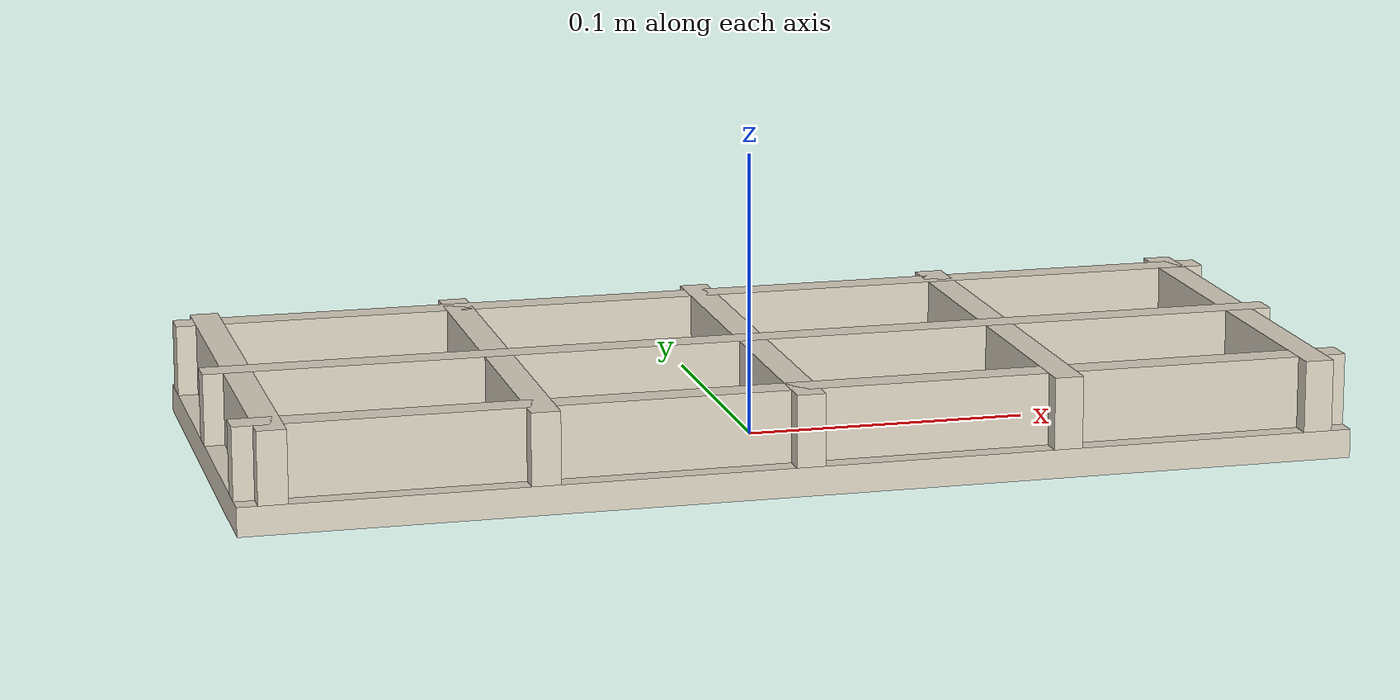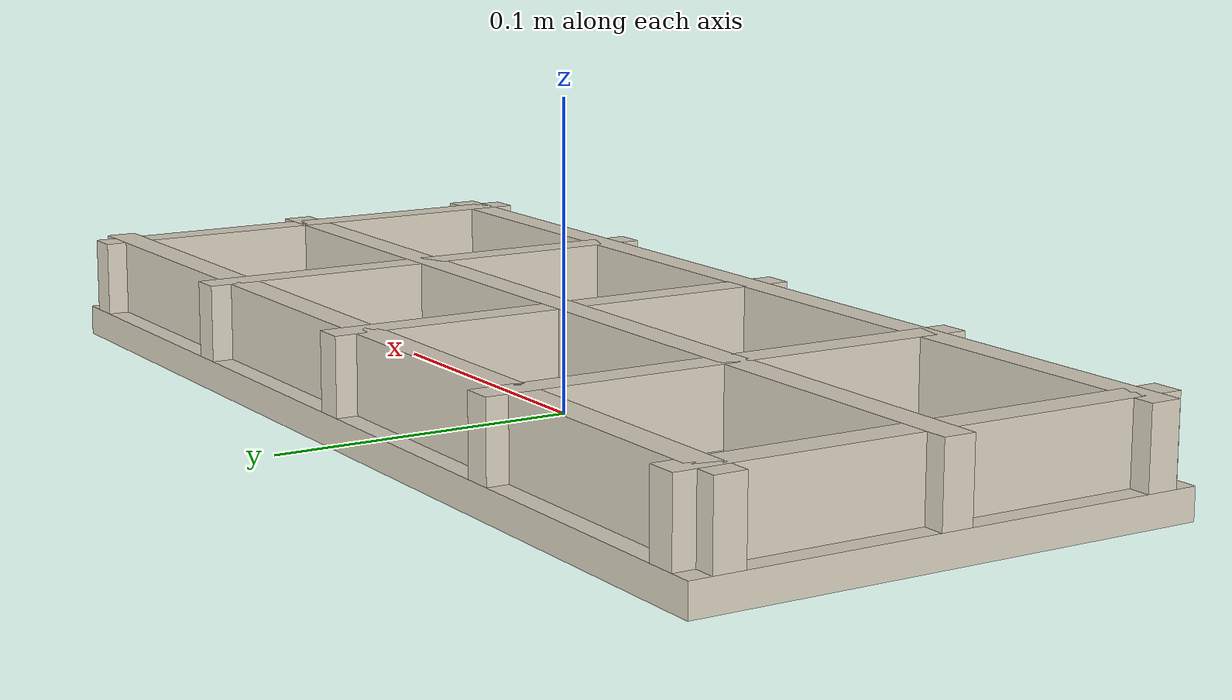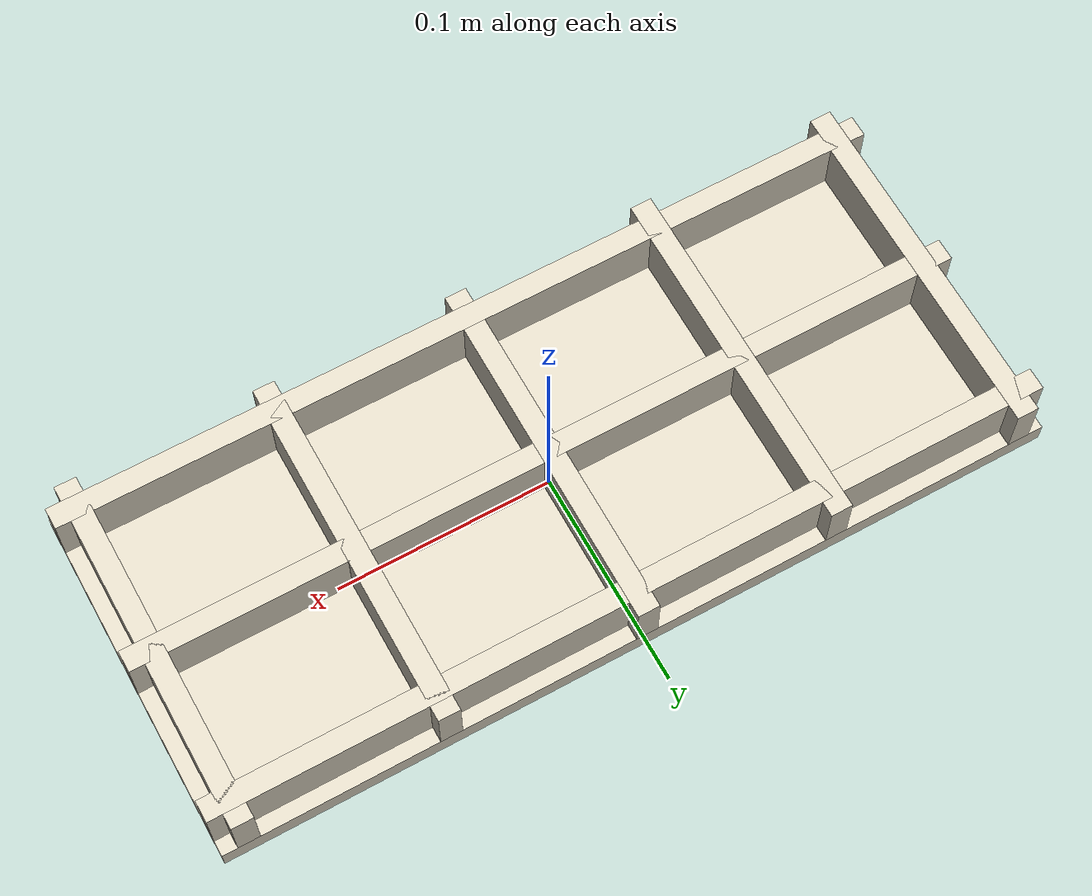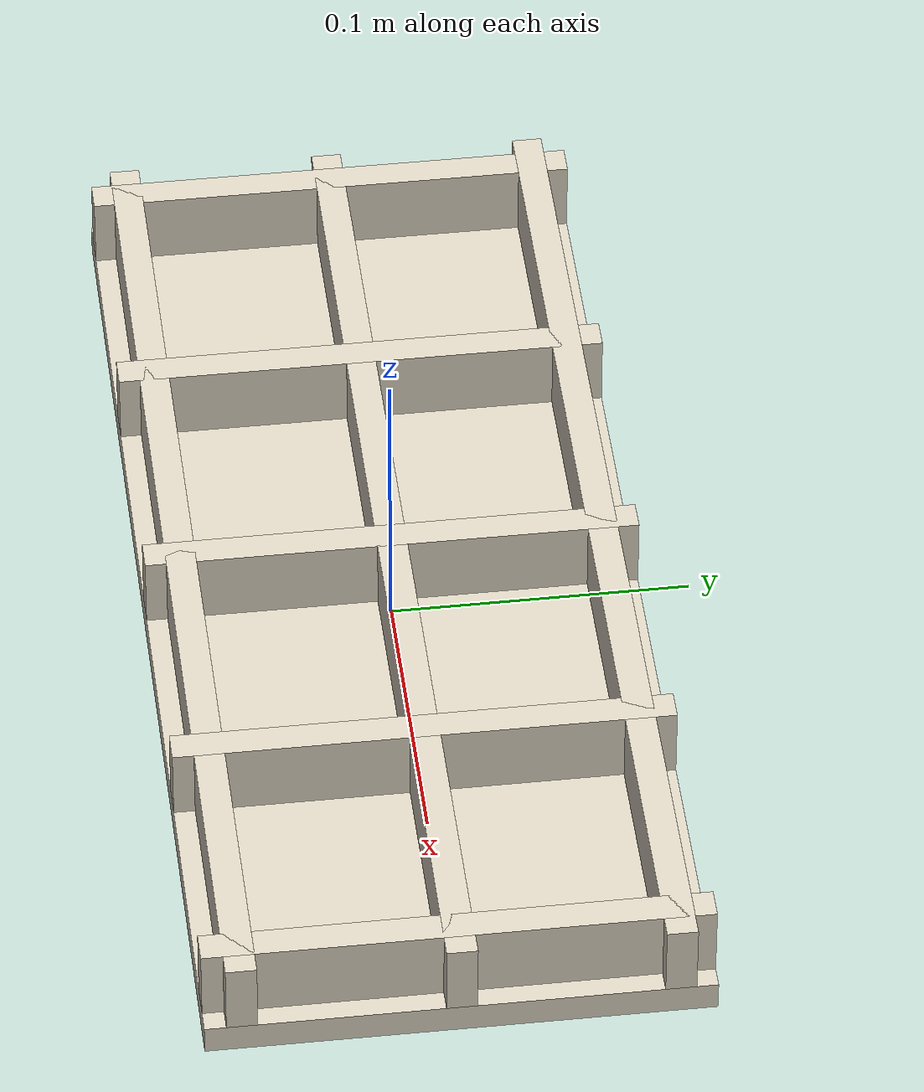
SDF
<?xml version="1.0" ?>
<sdf version="1.8">
  <model name="tray_2x4">
    <link name="link">
      <inertial>
        <pose>0 0 0.0175 0 0 0</pose>
        <mass>0.25</mass>
        <inertia><ixx>0.000586</ixx><iyy>0.003098</iyy><izz>0.003632</izz><ixy>0</ixy><ixz>0</ixz><iyz>0</iyz></inertia>
      </inertial>
      <visual name="base_v">
        <pose>0.0000 0.0000 0.0050 0 0 0</pose>
        <geometry><box><size>0.3840 0.1640 0.0100</size></box></geometry>
        <material><ambient>0.86 0.83 0.76 1</ambient><diffuse>0.86 0.83 0.76 1</diffuse></material>
        <plugin filename="ignition-gazebo-label-system" name="ignition::gazebo::systems::Label"><label>3</label></plugin>
      </visual>
      <collision name="base_c">
        <pose>0.0000 0.0000 0.0050 0 0 0</pose>
        <geometry><box><size>0.3840 0.1640 0.0100</size></box></geometry>
        <surface><friction><ode><mu>0.9</mu><mu2>0.9</mu2></ode></friction></surface>
      </collision>
      <visual name="wx0_v">
        <pose>-0.1800 0.0000 0.0225 0 0 0</pose>
        <geometry><box><size>0.0100 0.1640 0.0250</size></box></geometry>
        <material><ambient>0.86 0.83 0.76 1</ambient><diffuse>0.86 0.83 0.76 1</diffuse></material>
        <plugin filename="ignition-gazebo-label-system" name="ignition::gazebo::systems::Label"><label>3</label></plugin>
      </visual>
      <collision name="wx0_c">
        <pose>-0.1800 0.0000 0.0225 0 0 0</pose>
        <geometry><box><size>0.0100 0.1640 0.0250</size></box></geometry>
        <surface><friction><ode><mu>0.9</mu><mu2>0.9</mu2></ode></friction></surface>
      </collision>
      <visual name="wx1_v">
        <pose>-0.0900 0.0000 0.0225 0 0 0</pose>
        <geometry><box><size>0.0100 0.1640 0.0250</size></box></geometry>
        <material><ambient>0.86 0.83 0.76 1</ambient><diffuse>0.86 0.83 0.76 1</diffuse></material>
        <plugin filename="ignition-gazebo-label-system" name="ignition::gazebo::systems::Label"><label>3</label></plugin>
      </visual>
      <collision name="wx1_c">
        <pose>-0.0900 0.0000 0.0225 0 0 0</pose>
        <geometry><box><size>0.0100 0.1640 0.0250</size></box></geometry>
        <surface><friction><ode><mu>0.9</mu><mu2>0.9</mu2></ode></friction></surface>
      </collision>
      <visual name="wx2_v">
        <pose>0.0000 0.0000 0.0225 0 0 0</pose>
        <geometry><box><size>0.0100 0.1640 0.0250</size></box></geometry>
        <material><ambient>0.86 0.83 0.76 1</ambient><diffuse>0.86 0.83 0.76 1</diffuse></material>
        <plugin filename="ignition-gazebo-label-system" name="ignition::gazebo::systems::Label"><label>3</label></plugin>
      </visual>
      <collision name="wx2_c">
        <pose>0.0000 0.0000 0.0225 0 0 0</pose>
        <geometry><box><size>0.0100 0.1640 0.0250</size></box></geometry>
        <surface><friction><ode><mu>0.9</mu><mu2>0.9</mu2></ode></friction></surface>
      </collision>
      <visual name="wx3_v">
        <pose>0.0900 0.0000 0.0225 0 0 0</pose>
        <geometry><box><size>0.0100 0.1640 0.0250</size></box></geometry>
        <material><ambient>0.86 0.83 0.76 1</ambient><diffuse>0.86 0.83 0.76 1</diffuse></material>
        <plugin filename="ignition-gazebo-label-system" name="ignition::gazebo::systems::Label"><label>3</label></plugin>
      </visual>
      <collision name="wx3_c">
        <pose>0.0900 0.0000 0.0225 0 0 0</pose>
        <geometry><box><size>0.0100 0.1640 0.0250</size></box></geometry>
        <surface><friction><ode><mu>0.9</mu><mu2>0.9</mu2></ode></friction></surface>
      </collision>
      <visual name="wx4_v">
        <pose>0.1800 0.0000 0.0225 0 0 0</pose>
        <geometry><box><size>0.0100 0.1640 0.0250</size></box></geometry>
        <material><ambient>0.86 0.83 0.76 1</ambient><diffuse>0.86 0.83 0.76 1</diffuse></material>
        <plugin filename="ignition-gazebo-label-system" name="ignition::gazebo::systems::Label"><label>3</label></plugin>
      </visual>
      <collision name="wx4_c">
        <pose>0.1800 0.0000 0.0225 0 0 0</pose>
        <geometry><box><size>0.0100 0.1640 0.0250</size></box></geometry>
        <surface><friction><ode><mu>0.9</mu><mu2>0.9</mu2></ode></friction></surface>
      </collision>
      <visual name="wy0_v">
        <pose>0.0000 -0.0700 0.0225 0 0 0</pose>
        <geometry><box><size>0.3840 0.0100 0.0250</size></box></geometry>
        <material><ambient>0.86 0.83 0.76 1</ambient><diffuse>0.86 0.83 0.76 1</diffuse></material>
        <plugin filename="ignition-gazebo-label-system" name="ignition::gazebo::systems::Label"><label>3</label></plugin>
      </visual>
      <collision name="wy0_c">
        <pose>0.0000 -0.0700 0.0225 0 0 0</pose>
        <geometry><box><size>0.3840 0.0100 0.0250</size></box></geometry>
        <surface><friction><ode><mu>0.9</mu><mu2>0.9</mu2></ode></friction></surface>
      </collision>
      <visual name="wy1_v">
        <pose>0.0000 0.0000 0.0225 0 0 0</pose>
        <geometry><box><size>0.3840 0.0100 0.0250</size></box></geometry>
        <material><ambient>0.86 0.83 0.76 1</ambient><diffuse>0.86 0.83 0.76 1</diffuse></material>
        <plugin filename="ignition-gazebo-label-system" name="ignition::gazebo::systems::Label"><label>3</label></plugin>
      </visual>
      <collision name="wy1_c">
        <pose>0.0000 0.0000 0.0225 0 0 0</pose>
        <geometry><box><size>0.3840 0.0100 0.0250</size></box></geometry>
        <surface><friction><ode><mu>0.9</mu><mu2>0.9</mu2></ode></friction></surface>
      </collision>
      <visual name="wy2_v">
        <pose>0.0000 0.0700 0.0225 0 0 0</pose>
        <geometry><box><size>0.3840 0.0100 0.0250</size></box></geometry>
        <material><ambient>0.86 0.83 0.76 1</ambient><diffuse>0.86 0.83 0.76 1</diffuse></material>
        <plugin filename="ignition-gazebo-label-system" name="ignition::gazebo::systems::Label"><label>3</label></plugin>
      </visual>
      <collision name="wy2_c">
        <pose>0.0000 0.0700 0.0225 0 0 0</pose>
        <geometry><box><size>0.3840 0.0100 0.0250</size></box></geometry>
        <surface><friction><ode><mu>0.9</mu><mu2>0.9</mu2></ode></friction></surface>
      </collision>
    </link>
  </model>
</sdf>
